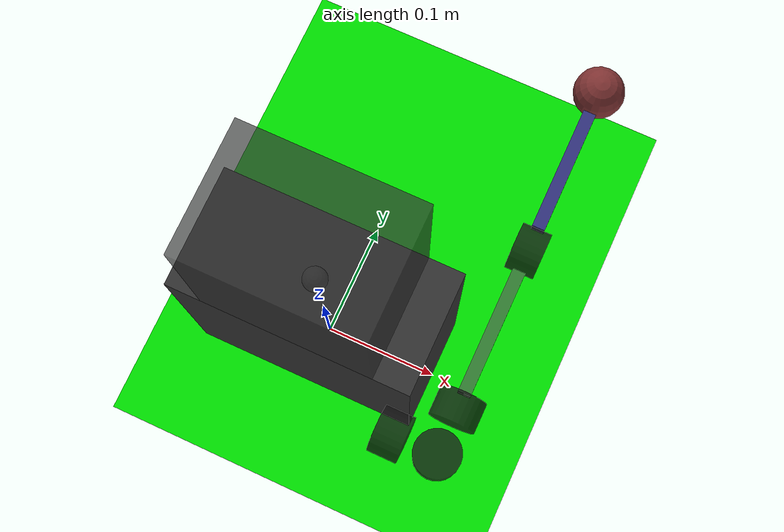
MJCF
<mujoco model="task1">
    <visual>
        <headlight ambient="0.5 0.5 0.5" />
    </visual>

    <option gravity="0 0 -9.81" />

    <worldbody>
        <light name="overhead" pos="0 0 1"/>
        <geom type="plane" pos="-0.5 -0.5 0" size="1 1 0.1" rgba="0 .9 0 1"/>
        <body name="base_section" euler="0 0 0">
            <geom name="lower_part" type="box" pos="0 0 0.1" size=".1 .05 .1" rgba="0.2 0.2 0.2 1"/>
            <geom name="ball_joint" pos="0 0 .2" size=".01" rgba="0.2 0.2 0.2 1"/>
            <geom name="upper_section" type="box" pos="0 0 .27" size=".07 .05 .07" rgba="0.2 0.2 0.2 0.7"/>
        </body>
        <body name="actuator1" euler="0 0 0">
            <geom type="cylinder" fromto="0.1105 -.08 0.2 0.0875 -.08 0.2" size=".018" mass="0.065" rgba=".1 .1 .1 .8"/>
            <joint name="pivot_1" pos="0.099 -.08 0.2" axis="1 0 0" range="-3.14 3.14"/>
            <body name="actuator2" euler="0 0 0">
                <geom type="cylinder" fromto="0.135 -.08 0.1885 0.135 -.08 0.2115" size=".018" mass="0.065" rgba=".1 .1 .1 .8"/>
                <joint name="pivot_2" pos="0.135 -.08 0.2" axis="0 0 1" range="-3.14 3.14"/>
                <body name="actuator3" euler="0 0 0">
                    <geom type="cylinder" fromto="0.135 -.0555 0.2 0.135 -.0325 0.2" size=".018" mass="0.065" rgba=".1 .1 .1 .8"/>
                    <joint name="pivot_3" pos="0.135 -.0440 0.2" axis="0 1 0" range="-3.14 3.14"/>
                    <body name="link_1" euler="0 0 0">
                        <geom name="connector1" type="box" pos="0.135 .0175 0.2" size=".005 .05 .005" mass="0.02" rgba="0.2 0.5 0.2 1"/>
                        <body name="joint1" euler="0 0 0">
                            <geom type="cylinder" fromto="0.1235 0.0855 0.2 0.1465 0.0855 0.2" size=".018" mass="0.065" rgba=".1 .1 .1 .8"/>
                            <joint name="pivot_4" pos="0.135 0.0855 0.2" axis="1 0 0" range="-3.14 3.14"/>
                            <body name="link_2" euler="0 0 0">
                                <geom name="connector2" type="box" pos="0.135 0.1535 0.2" size=".005 .05 .005" mass="0.02" rgba="0.2 0.2 0.5 1"/>
                                <body name="end_mass" euler="0 0 0">
                                    <geom name="mass_block" pos="0.135 0.2235 0.2" size=".02" mass="0.05" rgba="0.5 0.2 0.2 1"/>
                                </body>
                            </body>
                        </body>
                    </body>
                </body>
            </body>
        </body>
    </worldbody>

    <contact>
        <exclude body1="world" body2="base_section"/>
        <exclude body1="world" body2="actuator1"/>
        <exclude body1="world" body2="actuator2"/>
        <exclude body1="world" body2="actuator3"/>
        <exclude body1="world" body2="link_1"/>
        <exclude body1="world" body2="joint1"/>
        <exclude body1="world" body2="link_2"/>
        <exclude body1="world" body2="end_mass"/>
        <exclude body1="base_section" body2="actuator1"/>
        <exclude body1="base_section" body2="actuator2"/>
        <exclude body1="base_section" body2="actuator3"/>
        <exclude body1="base_section" body2="link_1"/>
        <exclude body1="base_section" body2="joint1"/>
        <exclude body1="base_section" body2="link_2"/>
        <exclude body1="base_section" body2="end_mass"/>
        <exclude body1="actuator1" body2="actuator2"/>
        <exclude body1="actuator1" body2="actuator3"/>
        <exclude body1="actuator1" body2="link_1"/>
        <exclude body1="actuator1" body2="joint1"/>
        <exclude body1="actuator1" body2="link_2"/>
        <exclude body1="actuator1" body2="end_mass"/>
        <exclude body1="actuator2" body2="actuator3"/>
        <exclude body1="actuator2" body2="link_1"/>
        <exclude body1="actuator2" body2="joint1"/>
        <exclude body1="actuator2" body2="link_2"/>
        <exclude body1="actuator2" body2="end_mass"/>
        <exclude body1="actuator3" body2="link_1"/>
        <exclude body1="actuator3" body2="joint1"/>
        <exclude body1="actuator3" body2="link_2"/>
        <exclude body1="actuator3" body2="end_mass"/>
        <exclude body1="link_1" body2="joint1"/>
        <exclude body1="link_1" body2="link_2"/>
        <exclude body1="link_1" body2="end_mass"/>
        <exclude body1="joint1" body2="link_2"/>
        <exclude body1="joint1" body2="end_mass"/>
        <exclude body1="link_2" body2="end_mass"/>
    </contact>

</mujoco>
